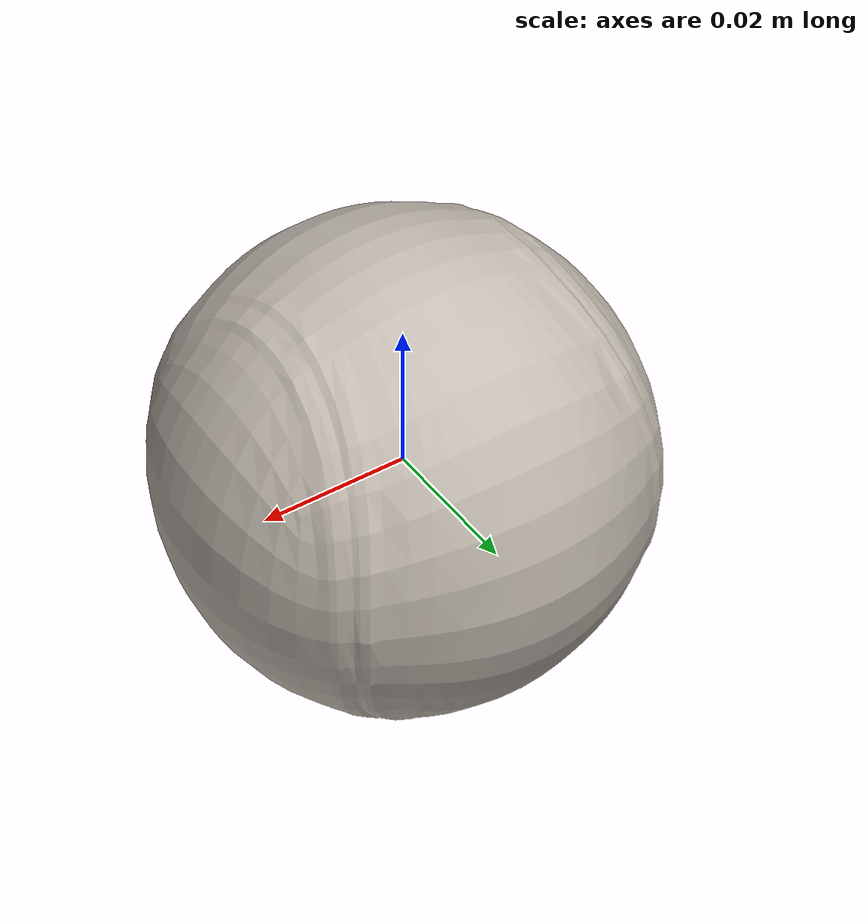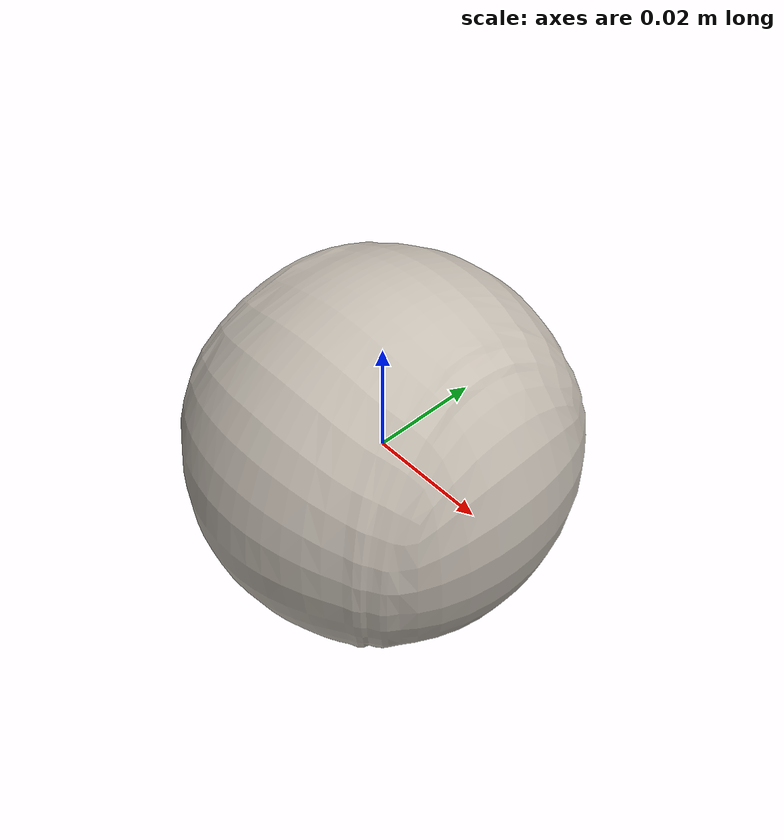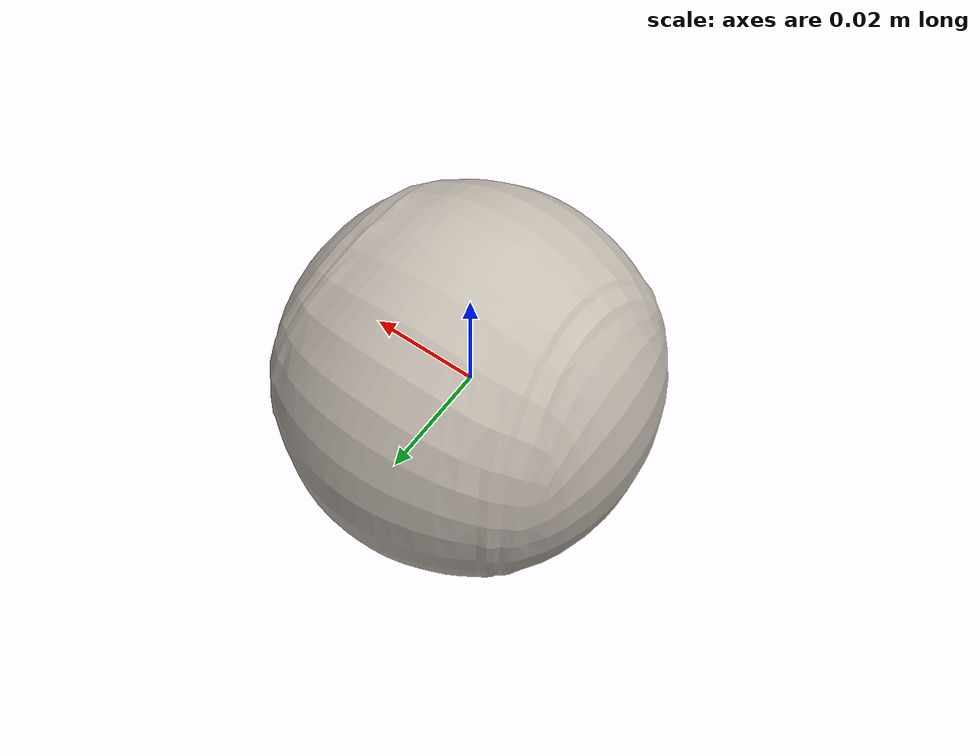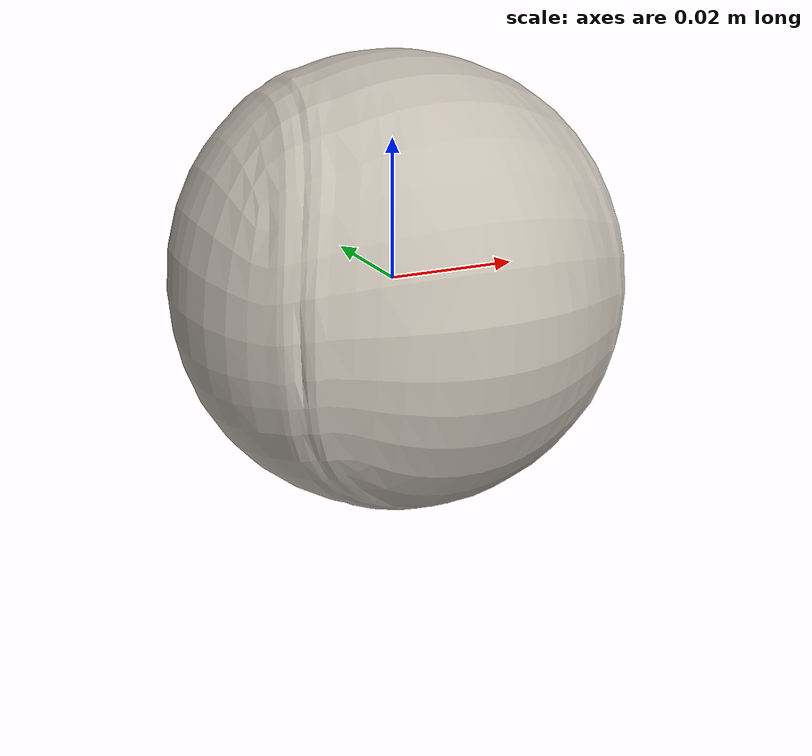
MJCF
<mujoco model="ball_1a7346e0">
  <compiler angle="radian"/>
  <asset>
    <texture type="2d" name="ball_1a7346e0_tex" file="ball_1a7346e0_visual_0.png"/>
    <material name="ball_1a7346e0_mat" texture="ball_1a7346e0_tex"/>
    <mesh name="ball_1a7346e0_visual" content_type="model/obj" file="ball_1a7346e0_visual.obj" scale="-0.914051 0.914051 0.914051"/>
    <mesh name="ball_1a7346e0_c0" content_type="model/obj" file="ball_1a7346e0_c0.obj" scale="-0.914051 0.914051 0.914051"/>
  </asset>
  <worldbody>
    <body name="ball_1a7346e0">
      <freejoint/>
      <geom name="ball_1a7346e0_visual" type="mesh" mesh="ball_1a7346e0_visual" mass="1e-8" contype="0" conaffinity="0" group="2" material="ball_1a7346e0_mat"/>
      <geom name="ball_1a7346e0_c0" type="mesh" mesh="ball_1a7346e0_c0" group="3" density="448.31" friction="0.9 0.05 0.005" condim="4" rgba="0.4 0.5 0.9 0.35"/>
    </body>
  </worldbody>
</mujoco>
